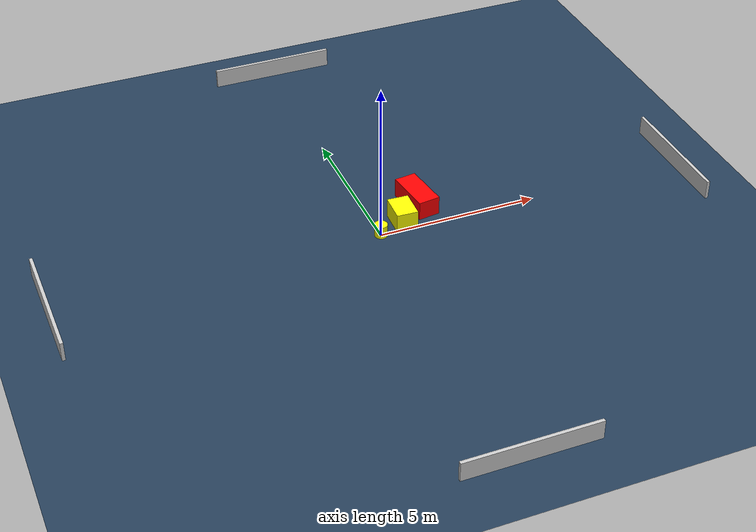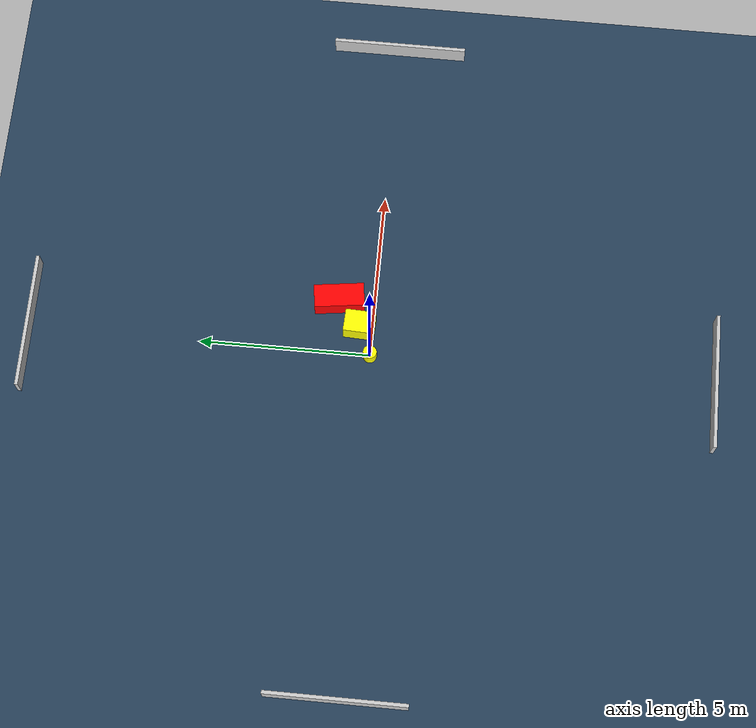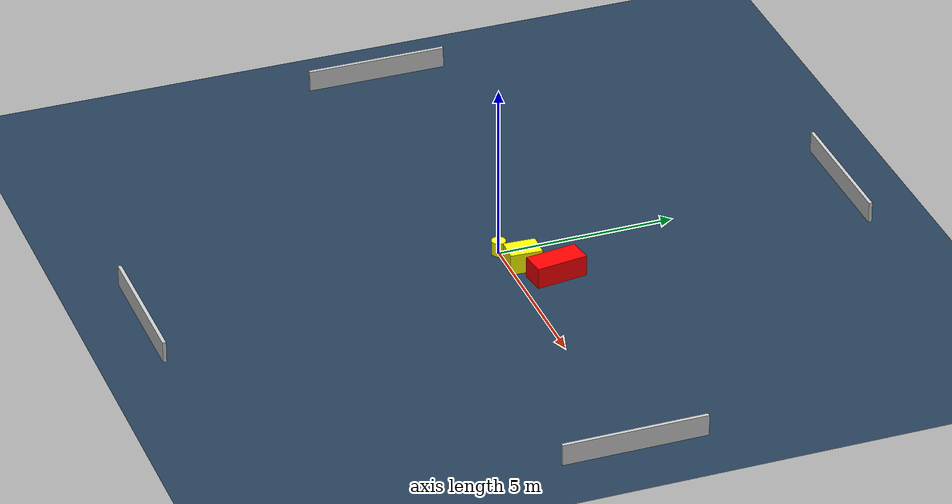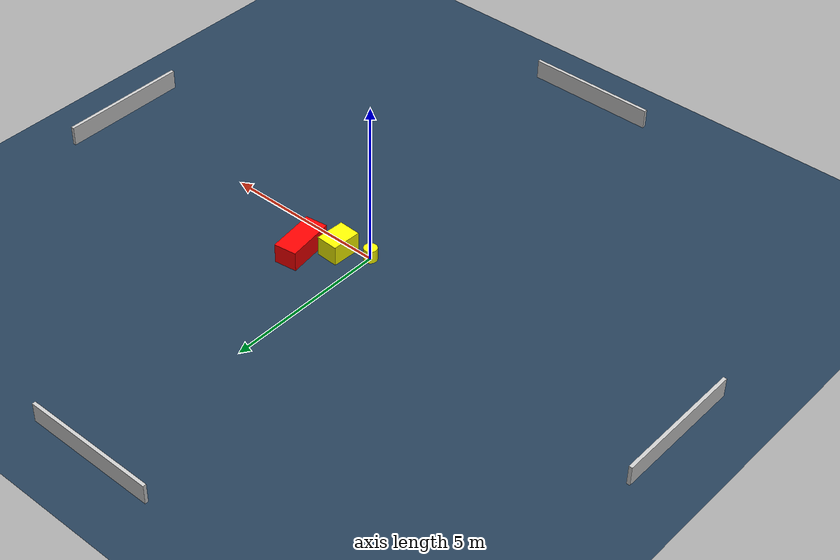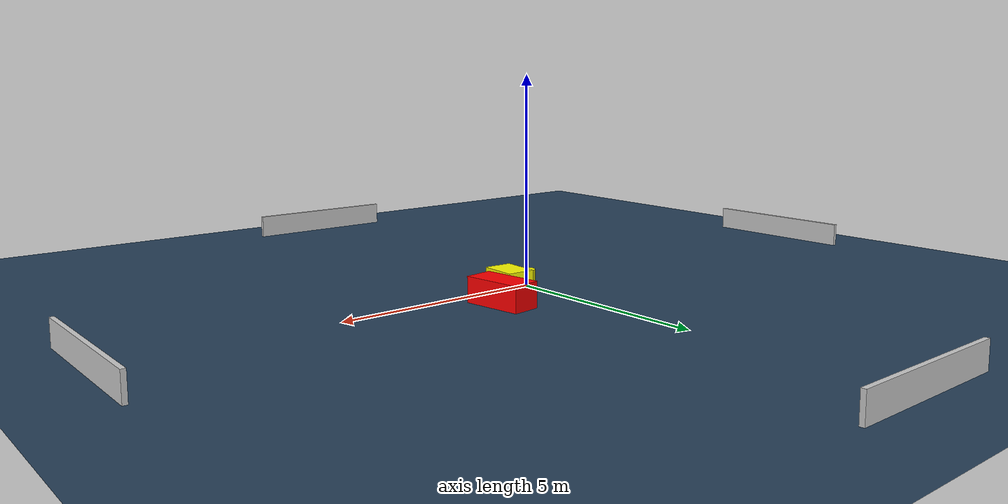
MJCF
<?xml version="1.0" ?>
<mujoco model="generated_environment">
  <option timestep="0.01" integrator="RK4" cone="elliptic"/>
  <default>
    <geom density="1"/>
  </default>
  <asset>
    <texture builtin="gradient" height="3072" name="skybox" rgb1="0.3 0.5 0.7" rgb2="0 0 0" type="skybox" width="512"/>
    <texture builtin="checker" height="300" name="groundplane" rgb1="0.2 0.3 0.4" rgb2="0.1 0.2 0.3" type="2d" width="300"/>
    <material name="groundplane" reflectance="0.2" texrepeat="5 5" texture="groundplane"/>
  </asset>
  <worldbody>
    <light dir="0 0 -1" directional="true" pos="0 0 1.5"/>
    <geom condim="3" friction="0.5 0.005 0.001" material="groundplane" name="floor" pos="0 0 0" size="0 0 0.05" type="plane"/>
    <body name="walls">
      <geom name="wall_1" condim="4" pos="-10.0 0.0 0.3" rgba="0.800000011920929 0.800000011920929 0.800000011920929 1.0" size="0.05 2.0 0.3" type="box"/>
      <geom name="wall_2" condim="4" pos="10.0 0.0 0.3" rgba="0.800000011920929 0.800000011920929 0.800000011920929 1.0" size="0.05 2.0 0.3" type="box"/>
      <geom name="wall_3" condim="4" pos="0.0 -10.0 0.3" rgba="0.800000011920929 0.800000011920929 0.800000011920929 1.0" size="2.0 0.05 0.3" type="box"/>
      <geom name="wall_4" condim="4" pos="0.0 10.0 0.3" rgba="0.800000011920929 0.800000011920929 0.800000011920929 1.0" size="2.0 0.05 0.3" type="box"/>
    </body>
    <body name="robot">
      <joint name="joint_x" type="slide" pos="0 0 0" axis="1 0 0"/>
      <joint name="joint_y" type="slide" pos="0 0 0" axis="0 1 0"/>
      <geom name="robot" type="cylinder" pos="0.0 0.0 0.2" size="0.2 0.2 0.0" mass="5.0" friction="1.0 0.005 0.0001" condim="4" rgba="1.0 1.0 0.0 1.0"/>
    </body>
    <body name="obstacle_1_movable">
      <geom name="obstacle_1_movable" condim="4" pos="0.8468957492492042 0.3763522511513162 0.3" euler="0 0 357.5409640446813" friction="0.0 0.005 0.001" rgba="1.0 1.0 0.0 1.0" size="0.3324953776380599 0.44941351762716053 0.3" type="box" mass="0.1"/>
      <joint type="free"/>
    </body>
    <body name="obstacle_2_static">
      <geom name="obstacle_2_static" condim="4" pos="1.6065427784197979 1.0489409920376453 0.3" euler="0 0 97.62634069457191" friction="0.0 0.005 0.001" rgba="1.0 0.0 0.0 1.0" size="0.7320385867996027 0.34291694102232384 0.3" type="box"/>
    </body>
  </worldbody>
  <actuator>
    <motor name="actuator_x" joint="joint_x" gear="1" ctrlrange="-1 1"/>
    <motor name="actuator_y" joint="joint_y" gear="1" ctrlrange="-1 1"/>
  </actuator>
</mujoco>
